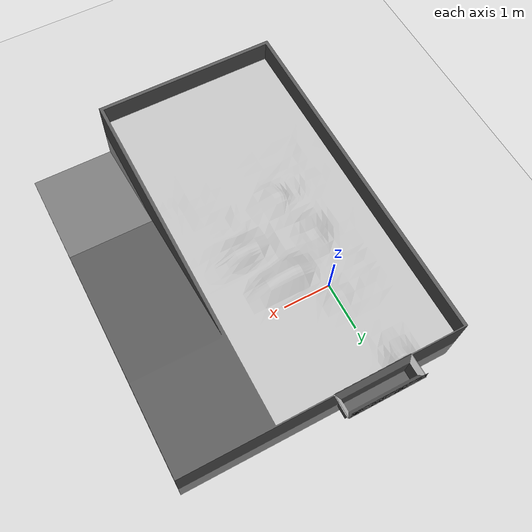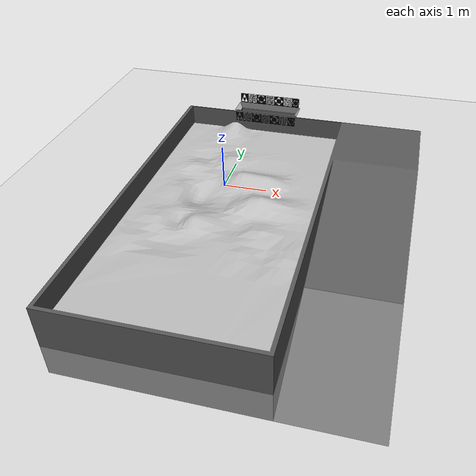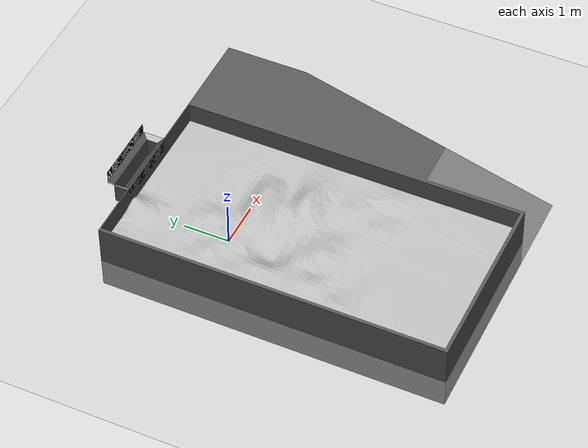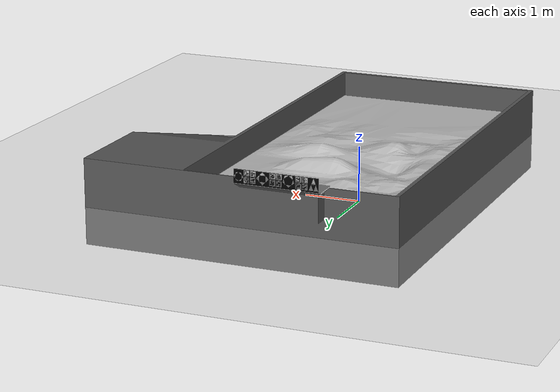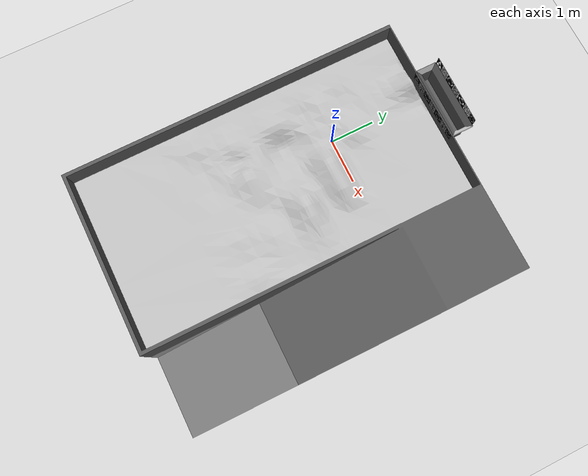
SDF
<?xml version="1.0" ?>
<sdf version="1.4">
  <world name="RMC_World">
    <include>
      <uri>model://ground_plane</uri>
    </include>
    <include>
      <uri>model://sun</uri>
    </include>
    <include>
      <uri>model://LunArena2</uri>
      <name>LunArena2</name>
      <pose>2 -3 -1 0 0 0</pose>
    </include>
  </world>
</sdf>

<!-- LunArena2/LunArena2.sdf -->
<sdf version='1.4'>
  <model name='LunArena2'>
    <link name='arena_base_link'>
      <collision name='arena_base_link_collision'>
        <pose>0 0 0 0 -0 0</pose>
        <geometry>
          <mesh>
            <scale>1 1 1</scale>
            <uri>model://LunArena2/meshes/whole_base.dae</uri>
          </mesh>
        </geometry>
      </collision>
      <visual name='arena_base_link_visual'>
        <pose>0 0 0 0 -0 0</pose>
        <geometry>
          <mesh>
            <scale>1 1 1</scale>
            <uri>model://LunArena2/meshes/whole_base.dae</uri>
          </mesh>
        </geometry>
      </visual>
    </link>

  </model>
</sdf>
